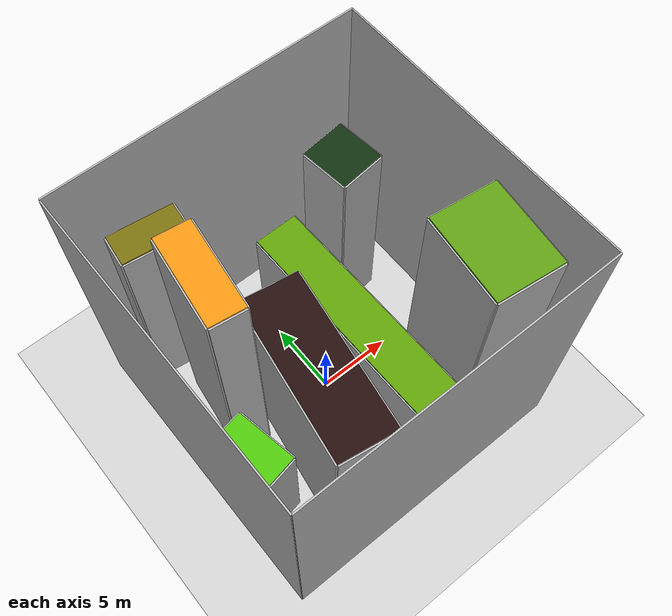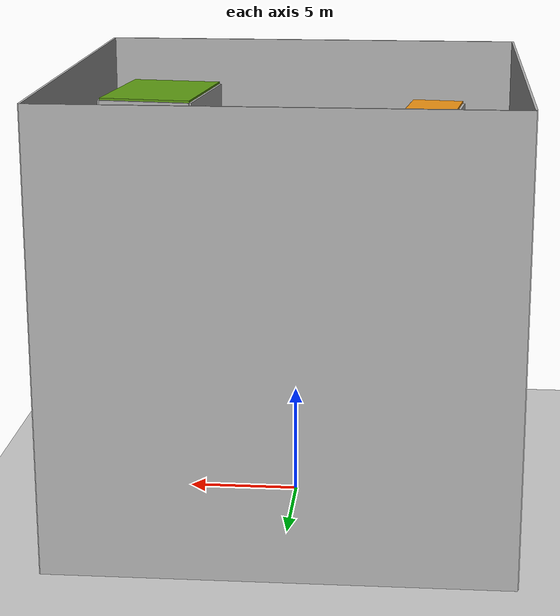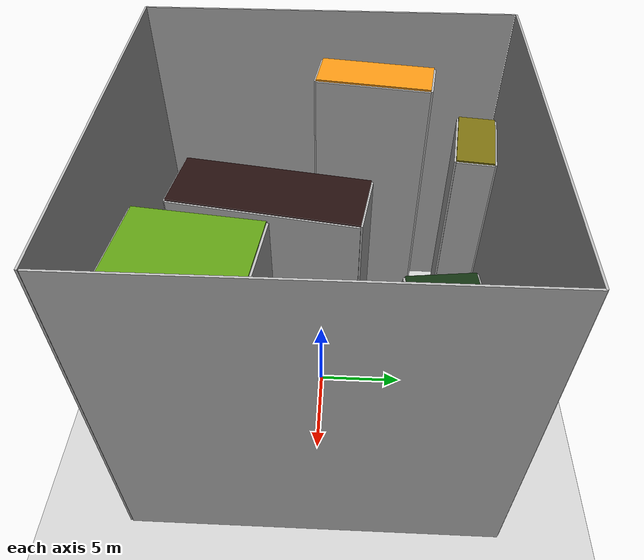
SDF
<sdf version='1.6'>
  <world name='default'>
    <light name='sun' type='directional'>
      <cast_shadows>1</cast_shadows>
      <pose frame=''>0 0 10 0 -0 0</pose>
      <diffuse>0.8 0.8 0.8 1</diffuse>
      <specular>0.2 0.2 0.2 1</specular>
      <attenuation>
        <range>1000</range>
        <constant>0.9</constant>
        <linear>0.01</linear>
        <quadratic>0.001</quadratic>
      </attenuation>
      <direction>-0.5 0.1 -0.9</direction>
    </light>
    <model name='ground_plane'>
      <static>true</static>
      <link name='link'>
        <collision name='collision'>
          <geometry>
            <plane>
              <normal>0 0 1</normal>
              <size>20 20</size>
            </plane>
          </geometry>
          <surface>
              <friction>
                <ode>
                  <mu>100</mu>
                  <mu2>50</mu2>
                </ode>
              </friction>
          </surface>
        </collision>
        <visual name='visual'>
          <cast_shadows>false</cast_shadows>
          <geometry>
            <plane>
              <normal>0 0 1</normal>
              <size>20 20</size>
            </plane>
          </geometry>
          <material>
            <script>
              <uri>file://media/materials/scripts/gazebo.material</uri>
              <name>Gazebo/Grey</name>
            </script>
          </material>
        </visual>
      </link>
    </model>
    <plugin name="ros_interface_plugin" filename="librotors_gazebo_ros_interface_plugin.so"/>

    <spherical_coordinates>
      <surface_model>EARTH_WGS84</surface_model>
      <latitude_deg>50.0885311</latitude_deg>
      <longitude_deg>14.4041669</longitude_deg>
      <elevation>200.0</elevation>
      <heading_deg>0</heading_deg>
    </spherical_coordinates>
    <gravity>0 0 -9.8</gravity>
    <physics type='ode'>
      <ode>
        <solver>
          <type>quick</type>
          <iters>1000</iters>
          <sor>1.3</sor>
        </solver>
        <constraints>
          <cfm>0</cfm>
          <erp>0.2</erp>
          <contact_max_correcting_vel>100</contact_max_correcting_vel>
          <contact_surface_layer>0.001</contact_surface_layer>
        </constraints>
      </ode>
      <max_step_size>0.01</max_step_size>
      <real_time_factor>1</real_time_factor>
      <real_time_update_rate>100</real_time_update_rate>
    </physics>
    <model name='upper_face_of_box_box_0'>
      <static>true</static>
      <pose>-3.037827730178833 -2.960949659347534 13.062334649037908 0.0 0.0 1.4183958447437104</pose>
      <link name='link'>
        <collision name='collision'>
          <geometry>
            <box>
              <size>10.705953951815745 3.7873968483794087 0.1</size>
            </box>
          </geometry>
          <surface>
              <friction>
                <ode>
                  <mu>100</mu>
                  <mu2>50</mu2>
                </ode>
              </friction>
          </surface>
        </collision>
        <visual name='visual'>
          <cast_shadows>false</cast_shadows>
          <geometry>
            <box>
              <size>10.705953951815745 3.7873968483794087 0.1</size>
            </box>
          </geometry>
          <material>
                        <ambient>0.1390484712361435 0.05330917590974482 0.05102876332956042 1</ambient>
            <diffuse>0.1390484712361435 0.05330917590974482 0.05102876332956042 1</diffuse>
          </material>
        </visual>
        <gravity>false</gravity>
      </link>
    </model>
    <model name='front_face_of_box_box_0'>
      <static>true</static>
      <pose>-1.1166577310633279 -3.2560249017791367 6.5061673245189535 0.0 0.0 2.989192171538607</pose>
      <link name='link'>
        <collision name='collision'>
          <geometry>
            <box>
              <size>0.1 10.705953951815745 13.012334649037907</size>
            </box>
          </geometry>
          <surface>
              <friction>
                <ode>
                  <mu>100</mu>
                  <mu2>50</mu2>
                </ode>
              </friction>
          </surface>
        </collision>
        <visual name='visual'>
          <cast_shadows>false</cast_shadows>
          <geometry>
            <box>
              <size>0.1 10.705953951815745 13.012334649037907</size>
            </box>
          </geometry>
          <material>
                        <script>
                <uri>/home/patik/Diplomka/dp_ws/src/helper_pkg/src/helper_pkg/../../../pesat_resources/worlds/box_world/scripts</uri>
                <uri>/home/patik/Diplomka/dp_ws/src/helper_pkg/src/helper_pkg/../../../pesat_resources/textures</uri>
                <name>vrc/majors_box_0</name>
            </script>
          </material>
        </visual>
        <gravity>false</gravity>
      </link>
    </model>
    <model name='back_face_of_box_box_0'>
      <static>true</static>
      <pose>-4.958997729294339 -2.6658744169159316 6.5061673245189535 0.0 0.0 2.989192171538607</pose>
      <link name='link'>
        <collision name='collision'>
          <geometry>
            <box>
              <size>0.1 10.705953951815745 13.012334649037907</size>
            </box>
          </geometry>
          <surface>
              <friction>
                <ode>
                  <mu>100</mu>
                  <mu2>50</mu2>
                </ode>
              </friction>
          </surface>
        </collision>
        <visual name='visual'>
          <cast_shadows>false</cast_shadows>
          <geometry>
            <box>
              <size>0.1 10.705953951815745 13.012334649037907</size>
            </box>
          </geometry>
          <material>
                        <script>
                <uri>/home/patik/Diplomka/dp_ws/src/helper_pkg/src/helper_pkg/../../../pesat_resources/worlds/box_world/scripts</uri>
                <uri>/home/patik/Diplomka/dp_ws/src/helper_pkg/src/helper_pkg/../../../pesat_resources/textures</uri>
                <name>vrc/majors_box_0</name>
            </script>
          </material>
        </visual>
        <gravity>false</gravity>
      </link>
    </model>
    <model name='left_face_of_box_box_0'>
      <static>true</static>
      <pose>-3.858060293614189 -8.301303462614772 6.5061673245189535 0.0 0.0 2.989192171538607</pose>
      <link name='link'>
        <collision name='collision'>
          <geometry>
            <box>
              <size>3.7873968483794087 0.1 13.012334649037907</size>
            </box>
          </geometry>
          <surface>
              <friction>
                <ode>
                  <mu>100</mu>
                  <mu2>50</mu2>
                </ode>
              </friction>
          </surface>
        </collision>
        <visual name='visual'>
          <cast_shadows>false</cast_shadows>
          <geometry>
            <box>
              <size>3.7873968483794087 0.1 13.012334649037907</size>
            </box>
          </geometry>
          <material>
                        <script>
                <uri>/home/patik/Diplomka/dp_ws/src/helper_pkg/src/helper_pkg/../../../pesat_resources/worlds/box_world/scripts</uri>
                <uri>/home/patik/Diplomka/dp_ws/src/helper_pkg/src/helper_pkg/../../../pesat_resources/textures</uri>
                <name>vrc/minors_box_0</name>
            </script>
          </material>
        </visual>
        <gravity>false</gravity>
      </link>
    </model>
    <model name='right_face_of_box_box_0'>
      <static>true</static>
      <pose>-2.217595166743477 2.379404143919703 6.5061673245189535 0.0 0.0 2.989192171538607</pose>
      <link name='link'>
        <collision name='collision'>
          <geometry>
            <box>
              <size>3.7873968483794087 0.1 13.012334649037907</size>
            </box>
          </geometry>
          <surface>
              <friction>
                <ode>
                  <mu>100</mu>
                  <mu2>50</mu2>
                </ode>
              </friction>
          </surface>
        </collision>
        <visual name='visual'>
          <cast_shadows>false</cast_shadows>
          <geometry>
            <box>
              <size>3.7873968483794087 0.1 13.012334649037907</size>
            </box>
          </geometry>
          <material>
                        <script>
                <uri>/home/patik/Diplomka/dp_ws/src/helper_pkg/src/helper_pkg/../../../pesat_resources/worlds/box_world/scripts</uri>
                <uri>/home/patik/Diplomka/dp_ws/src/helper_pkg/src/helper_pkg/../../../pesat_resources/textures</uri>
                <name>vrc/minors_box_0</name>
            </script>
          </material>
        </visual>
        <gravity>false</gravity>
      </link>
    </model>
    <model name='upper_face_of_box_box_1'>
      <static>true</static>
      <pose>2.6477463245391846 -0.07830039411783218 6.855897089241907 0.0 0.0 0.014196406812587381</pose>
      <link name='link'>
        <collision name='collision'>
          <geometry>
            <box>
              <size>3.0877584974595695 16.722131010473845 0.1</size>
            </box>
          </geometry>
          <surface>
              <friction>
                <ode>
                  <mu>100</mu>
                  <mu2>50</mu2>
                </ode>
              </friction>
          </surface>
        </collision>
        <visual name='visual'>
          <cast_shadows>false</cast_shadows>
          <geometry>
            <box>
              <size>3.0877584974595695 16.722131010473845 0.1</size>
            </box>
          </geometry>
          <material>
                        <ambient>0.3665146074727429 0.6187437208969343 0.026689792506831008 1</ambient>
            <diffuse>0.3665146074727429 0.6187437208969343 0.026689792506831008 1</diffuse>
          </material>
        </visual>
        <gravity>false</gravity>
      </link>
    </model>
    <model name='front_face_of_box_box_1'>
      <static>true</static>
      <pose>2.767149221381709 -8.488518339070987 3.4029485446209535 0.0 0.0 1.5849927336074838</pose>
      <link name='link'>
        <collision name='collision'>
          <geometry>
            <box>
              <size>0.1 3.0877584974595695 6.805897089241907</size>
            </box>
          </geometry>
          <surface>
              <friction>
                <ode>
                  <mu>100</mu>
                  <mu2>50</mu2>
                </ode>
              </friction>
          </surface>
        </collision>
        <visual name='visual'>
          <cast_shadows>false</cast_shadows>
          <geometry>
            <box>
              <size>0.1 3.0877584974595695 6.805897089241907</size>
            </box>
          </geometry>
          <material>
                        <script>
                <uri>/home/patik/Diplomka/dp_ws/src/helper_pkg/src/helper_pkg/../../../pesat_resources/worlds/box_world/scripts</uri>
                <uri>/home/patik/Diplomka/dp_ws/src/helper_pkg/src/helper_pkg/../../../pesat_resources/textures</uri>
                <name>vrc/majors_box_1</name>
            </script>
          </material>
        </visual>
        <gravity>false</gravity>
      </link>
    </model>
    <model name='back_face_of_box_box_1'>
      <static>true</static>
      <pose>2.5283434276966603 8.331917550835323 3.4029485446209535 0.0 0.0 1.5849927336074838</pose>
      <link name='link'>
        <collision name='collision'>
          <geometry>
            <box>
              <size>0.1 3.0877584974595695 6.805897089241907</size>
            </box>
          </geometry>
          <surface>
              <friction>
                <ode>
                  <mu>100</mu>
                  <mu2>50</mu2>
                </ode>
              </friction>
          </surface>
        </collision>
        <visual name='visual'>
          <cast_shadows>false</cast_shadows>
          <geometry>
            <box>
              <size>0.1 3.0877584974595695 6.805897089241907</size>
            </box>
          </geometry>
          <material>
                        <script>
                <uri>/home/patik/Diplomka/dp_ws/src/helper_pkg/src/helper_pkg/../../../pesat_resources/worlds/box_world/scripts</uri>
                <uri>/home/patik/Diplomka/dp_ws/src/helper_pkg/src/helper_pkg/../../../pesat_resources/textures</uri>
                <name>vrc/majors_box_1</name>
            </script>
          </material>
        </visual>
        <gravity>false</gravity>
      </link>
    </model>
    <model name='left_face_of_box_box_1'>
      <static>true</static>
      <pose>1.0540276867031688 -0.10092699230530665 3.4029485446209535 0.0 0.0 1.5849927336074838</pose>
      <link name='link'>
        <collision name='collision'>
          <geometry>
            <box>
              <size>16.722131010473845 0.1 6.805897089241907</size>
            </box>
          </geometry>
          <surface>
              <friction>
                <ode>
                  <mu>100</mu>
                  <mu2>50</mu2>
                </ode>
              </friction>
          </surface>
        </collision>
        <visual name='visual'>
          <cast_shadows>false</cast_shadows>
          <geometry>
            <box>
              <size>16.722131010473845 0.1 6.805897089241907</size>
            </box>
          </geometry>
          <material>
                        <script>
                <uri>/home/patik/Diplomka/dp_ws/src/helper_pkg/src/helper_pkg/../../../pesat_resources/worlds/box_world/scripts</uri>
                <uri>/home/patik/Diplomka/dp_ws/src/helper_pkg/src/helper_pkg/../../../pesat_resources/textures</uri>
                <name>vrc/minors_box_1</name>
            </script>
          </material>
        </visual>
        <gravity>false</gravity>
      </link>
    </model>
    <model name='right_face_of_box_box_1'>
      <static>true</static>
      <pose>4.2414649623752005 -0.05567379593035772 3.4029485446209535 0.0 0.0 1.5849927336074838</pose>
      <link name='link'>
        <collision name='collision'>
          <geometry>
            <box>
              <size>16.722131010473845 0.1 6.805897089241907</size>
            </box>
          </geometry>
          <surface>
              <friction>
                <ode>
                  <mu>100</mu>
                  <mu2>50</mu2>
                </ode>
              </friction>
          </surface>
        </collision>
        <visual name='visual'>
          <cast_shadows>false</cast_shadows>
          <geometry>
            <box>
              <size>16.722131010473845 0.1 6.805897089241907</size>
            </box>
          </geometry>
          <material>
                        <script>
                <uri>/home/patik/Diplomka/dp_ws/src/helper_pkg/src/helper_pkg/../../../pesat_resources/worlds/box_world/scripts</uri>
                <uri>/home/patik/Diplomka/dp_ws/src/helper_pkg/src/helper_pkg/../../../pesat_resources/textures</uri>
                <name>vrc/minors_box_1</name>
            </script>
          </material>
        </visual>
        <gravity>false</gravity>
      </link>
    </model>
    <model name='upper_face_of_box_box_2'>
      <static>true</static>
      <pose>5.8997111320495605 5.769093990325928 14.602008485318542 0.0 0.0 0.1116231011678076</pose>
      <link name='link'>
        <collision name='collision'>
          <geometry>
            <box>
              <size>2.9948961892771937 3.255330037248059 0.1</size>
            </box>
          </geometry>
          <surface>
              <friction>
                <ode>
                  <mu>100</mu>
                  <mu2>50</mu2>
                </ode>
              </friction>
          </surface>
        </collision>
        <visual name='visual'>
          <cast_shadows>false</cast_shadows>
          <geometry>
            <box>
              <size>2.9948961892771937 3.255330037248059 0.1</size>
            </box>
          </geometry>
          <material>
                        <ambient>0.06880007246690367 0.1894479278761465 0.05706669994242566 1</ambient>
            <diffuse>0.06880007246690367 0.1894479278761465 0.05706669994242566 1</diffuse>
          </material>
        </visual>
        <gravity>false</gravity>
      </link>
    </model>
    <model name='front_face_of_box_box_2'>
      <static>true</static>
      <pose>6.086588665768598 4.101869739630822 7.276004242659271 0.0 0.0 1.6824194279627043</pose>
      <link name='link'>
        <collision name='collision'>
          <geometry>
            <box>
              <size>0.1 2.9948961892771937 14.552008485318542</size>
            </box>
          </geometry>
          <surface>
              <friction>
                <ode>
                  <mu>100</mu>
                  <mu2>50</mu2>
                </ode>
              </friction>
          </surface>
        </collision>
        <visual name='visual'>
          <cast_shadows>false</cast_shadows>
          <geometry>
            <box>
              <size>0.1 2.9948961892771937 14.552008485318542</size>
            </box>
          </geometry>
          <material>
                        <script>
                <uri>/home/patik/Diplomka/dp_ws/src/helper_pkg/src/helper_pkg/../../../pesat_resources/worlds/box_world/scripts</uri>
                <uri>/home/patik/Diplomka/dp_ws/src/helper_pkg/src/helper_pkg/../../../pesat_resources/textures</uri>
                <name>vrc/majors_box_2</name>
            </script>
          </material>
        </visual>
        <gravity>false</gravity>
      </link>
    </model>
    <model name='back_face_of_box_box_2'>
      <static>true</static>
      <pose>5.712833598330523 7.436318241021033 7.276004242659271 0.0 0.0 1.6824194279627043</pose>
      <link name='link'>
        <collision name='collision'>
          <geometry>
            <box>
              <size>0.1 2.9948961892771937 14.552008485318542</size>
            </box>
          </geometry>
          <surface>
              <friction>
                <ode>
                  <mu>100</mu>
                  <mu2>50</mu2>
                </ode>
              </friction>
          </surface>
        </collision>
        <visual name='visual'>
          <cast_shadows>false</cast_shadows>
          <geometry>
            <box>
              <size>0.1 2.9948961892771937 14.552008485318542</size>
            </box>
          </geometry>
          <material>
                        <script>
                <uri>/home/patik/Diplomka/dp_ws/src/helper_pkg/src/helper_pkg/../../../pesat_resources/worlds/box_world/scripts</uri>
                <uri>/home/patik/Diplomka/dp_ws/src/helper_pkg/src/helper_pkg/../../../pesat_resources/textures</uri>
                <name>vrc/majors_box_2</name>
            </script>
          </material>
        </visual>
        <gravity>false</gravity>
      </link>
    </model>
    <model name='left_face_of_box_box_2'>
      <static>true</static>
      <pose>4.361893414309106 5.596721508171258 7.276004242659271 0.0 0.0 1.6824194279627043</pose>
      <link name='link'>
        <collision name='collision'>
          <geometry>
            <box>
              <size>3.255330037248059 0.1 14.552008485318542</size>
            </box>
          </geometry>
          <surface>
              <friction>
                <ode>
                  <mu>100</mu>
                  <mu2>50</mu2>
                </ode>
              </friction>
          </surface>
        </collision>
        <visual name='visual'>
          <cast_shadows>false</cast_shadows>
          <geometry>
            <box>
              <size>3.255330037248059 0.1 14.552008485318542</size>
            </box>
          </geometry>
          <material>
                        <script>
                <uri>/home/patik/Diplomka/dp_ws/src/helper_pkg/src/helper_pkg/../../../pesat_resources/worlds/box_world/scripts</uri>
                <uri>/home/patik/Diplomka/dp_ws/src/helper_pkg/src/helper_pkg/../../../pesat_resources/textures</uri>
                <name>vrc/minors_box_2</name>
            </script>
          </material>
        </visual>
        <gravity>false</gravity>
      </link>
    </model>
    <model name='right_face_of_box_box_2'>
      <static>true</static>
      <pose>7.437528849790015 5.941466472480598 7.276004242659271 0.0 0.0 1.6824194279627043</pose>
      <link name='link'>
        <collision name='collision'>
          <geometry>
            <box>
              <size>3.255330037248059 0.1 14.552008485318542</size>
            </box>
          </geometry>
          <surface>
              <friction>
                <ode>
                  <mu>100</mu>
                  <mu2>50</mu2>
                </ode>
              </friction>
          </surface>
        </collision>
        <visual name='visual'>
          <cast_shadows>false</cast_shadows>
          <geometry>
            <box>
              <size>3.255330037248059 0.1 14.552008485318542</size>
            </box>
          </geometry>
          <material>
                        <script>
                <uri>/home/patik/Diplomka/dp_ws/src/helper_pkg/src/helper_pkg/../../../pesat_resources/worlds/box_world/scripts</uri>
                <uri>/home/patik/Diplomka/dp_ws/src/helper_pkg/src/helper_pkg/../../../pesat_resources/textures</uri>
                <name>vrc/minors_box_2</name>
            </script>
          </material>
        </visual>
        <gravity>false</gravity>
      </link>
    </model>
    <model name='upper_face_of_box_box_3'>
      <static>true</static>
      <pose>-8.055870056152344 -3.391749858856201 8.911956005183466 0.0 0.0 0.18888422416856054</pose>
      <link name='link'>
        <collision name='collision'>
          <geometry>
            <box>
              <size>2.50324302572536 4.104577759444691 0.1</size>
            </box>
          </geometry>
          <surface>
              <friction>
                <ode>
                  <mu>100</mu>
                  <mu2>50</mu2>
                </ode>
              </friction>
          </surface>
        </collision>
        <visual name='visual'>
          <cast_shadows>false</cast_shadows>
          <geometry>
            <box>
              <size>2.50324302572536 4.104577759444691 0.1</size>
            </box>
          </geometry>
          <material>
                        <ambient>0.30669045885037083 0.7667523879646418 0.03475276864777829 1</ambient>
            <diffuse>0.30669045885037083 0.7667523879646418 0.03475276864777829 1</diffuse>
          </material>
        </visual>
        <gravity>false</gravity>
      </link>
    </model>
    <model name='front_face_of_box_box_3'>
      <static>true</static>
      <pose>-7.661137818835439 -5.456648160135716 4.430978002591733 0.0 0.0 1.759680550963457</pose>
      <link name='link'>
        <collision name='collision'>
          <geometry>
            <box>
              <size>0.1 2.50324302572536 8.861956005183465</size>
            </box>
          </geometry>
          <surface>
              <friction>
                <ode>
                  <mu>100</mu>
                  <mu2>50</mu2>
                </ode>
              </friction>
          </surface>
        </collision>
        <visual name='visual'>
          <cast_shadows>false</cast_shadows>
          <geometry>
            <box>
              <size>0.1 2.50324302572536 8.861956005183465</size>
            </box>
          </geometry>
          <material>
                        <script>
                <uri>/home/patik/Diplomka/dp_ws/src/helper_pkg/src/helper_pkg/../../../pesat_resources/worlds/box_world/scripts</uri>
                <uri>/home/patik/Diplomka/dp_ws/src/helper_pkg/src/helper_pkg/../../../pesat_resources/textures</uri>
                <name>vrc/majors_box_3</name>
            </script>
          </material>
        </visual>
        <gravity>false</gravity>
      </link>
    </model>
    <model name='back_face_of_box_box_3'>
      <static>true</static>
      <pose>-8.450602293469249 -1.3268515575766866 4.430978002591733 0.0 0.0 1.759680550963457</pose>
      <link name='link'>
        <collision name='collision'>
          <geometry>
            <box>
              <size>0.1 2.50324302572536 8.861956005183465</size>
            </box>
          </geometry>
          <surface>
              <friction>
                <ode>
                  <mu>100</mu>
                  <mu2>50</mu2>
                </ode>
              </friction>
          </surface>
        </collision>
        <visual name='visual'>
          <cast_shadows>false</cast_shadows>
          <geometry>
            <box>
              <size>0.1 2.50324302572536 8.861956005183465</size>
            </box>
          </geometry>
          <material>
                        <script>
                <uri>/home/patik/Diplomka/dp_ws/src/helper_pkg/src/helper_pkg/../../../pesat_resources/worlds/box_world/scripts</uri>
                <uri>/home/patik/Diplomka/dp_ws/src/helper_pkg/src/helper_pkg/../../../pesat_resources/textures</uri>
                <name>vrc/majors_box_3</name>
            </script>
          </material>
        </visual>
        <gravity>false</gravity>
      </link>
    </model>
    <model name='left_face_of_box_box_3'>
      <static>true</static>
      <pose>-9.334341381736293 -3.6361463244741703 4.430978002591733 0.0 0.0 1.759680550963457</pose>
      <link name='link'>
        <collision name='collision'>
          <geometry>
            <box>
              <size>4.104577759444691 0.1 8.861956005183465</size>
            </box>
          </geometry>
          <surface>
              <friction>
                <ode>
                  <mu>100</mu>
                  <mu2>50</mu2>
                </ode>
              </friction>
          </surface>
        </collision>
        <visual name='visual'>
          <cast_shadows>false</cast_shadows>
          <geometry>
            <box>
              <size>4.104577759444691 0.1 8.861956005183465</size>
            </box>
          </geometry>
          <material>
                        <script>
                <uri>/home/patik/Diplomka/dp_ws/src/helper_pkg/src/helper_pkg/../../../pesat_resources/worlds/box_world/scripts</uri>
                <uri>/home/patik/Diplomka/dp_ws/src/helper_pkg/src/helper_pkg/../../../pesat_resources/textures</uri>
                <name>vrc/minors_box_3</name>
            </script>
          </material>
        </visual>
        <gravity>false</gravity>
      </link>
    </model>
    <model name='right_face_of_box_box_3'>
      <static>true</static>
      <pose>-6.777398730568396 -3.1473533932382325 4.430978002591733 0.0 0.0 1.759680550963457</pose>
      <link name='link'>
        <collision name='collision'>
          <geometry>
            <box>
              <size>4.104577759444691 0.1 8.861956005183465</size>
            </box>
          </geometry>
          <surface>
              <friction>
                <ode>
                  <mu>100</mu>
                  <mu2>50</mu2>
                </ode>
              </friction>
          </surface>
        </collision>
        <visual name='visual'>
          <cast_shadows>false</cast_shadows>
          <geometry>
            <box>
              <size>4.104577759444691 0.1 8.861956005183465</size>
            </box>
          </geometry>
          <material>
                        <script>
                <uri>/home/patik/Diplomka/dp_ws/src/helper_pkg/src/helper_pkg/../../../pesat_resources/worlds/box_world/scripts</uri>
                <uri>/home/patik/Diplomka/dp_ws/src/helper_pkg/src/helper_pkg/../../../pesat_resources/textures</uri>
                <name>vrc/minors_box_3</name>
            </script>
          </material>
        </visual>
        <gravity>false</gravity>
      </link>
    </model>
    <model name='upper_face_of_box_box_4'>
      <static>true</static>
      <pose>6.899400234222412 -5.146559238433838 18.116273096288605 0.0 0.0 1.453758267436935</pose>
      <link name='link'>
        <collision name='collision'>
          <geometry>
            <box>
              <size>5.80870292299687 4.315497444378678 0.1</size>
            </box>
          </geometry>
          <surface>
              <friction>
                <ode>
                  <mu>100</mu>
                  <mu2>50</mu2>
                </ode>
              </friction>
          </surface>
        </collision>
        <visual name='visual'>
          <cast_shadows>false</cast_shadows>
          <geometry>
            <box>
              <size>5.80870292299687 4.315497444378678 0.1</size>
            </box>
          </geometry>
          <material>
                        <ambient>0.36748517363764066 0.6101431089426826 0.07084812978936708 1</ambient>
            <diffuse>0.36748517363764066 0.6101431089426826 0.07084812978936708 1</diffuse>
          </material>
        </visual>
        <gravity>false</gravity>
      </link>
    </model>
    <model name='front_face_of_box_box_4'>
      <static>true</static>
      <pose>9.092045440062055 -5.404360366509511 9.033136548144302 0.0 0.0 3.0245545942318315</pose>
      <link name='link'>
        <collision name='collision'>
          <geometry>
            <box>
              <size>0.1 5.80870292299687 18.066273096288604</size>
            </box>
          </geometry>
          <surface>
              <friction>
                <ode>
                  <mu>100</mu>
                  <mu2>50</mu2>
                </ode>
              </friction>
          </surface>
        </collision>
        <visual name='visual'>
          <cast_shadows>false</cast_shadows>
          <geometry>
            <box>
              <size>0.1 5.80870292299687 18.066273096288604</size>
            </box>
          </geometry>
          <material>
                        <script>
                <uri>/home/patik/Diplomka/dp_ws/src/helper_pkg/src/helper_pkg/../../../pesat_resources/worlds/box_world/scripts</uri>
                <uri>/home/patik/Diplomka/dp_ws/src/helper_pkg/src/helper_pkg/../../../pesat_resources/textures</uri>
                <name>vrc/majors_box_4</name>
            </script>
          </material>
        </visual>
        <gravity>false</gravity>
      </link>
    </model>
    <model name='back_face_of_box_box_4'>
      <static>true</static>
      <pose>4.706755028382769 -4.8887581103581645 9.033136548144302 0.0 0.0 3.0245545942318315</pose>
      <link name='link'>
        <collision name='collision'>
          <geometry>
            <box>
              <size>0.1 5.80870292299687 18.066273096288604</size>
            </box>
          </geometry>
          <surface>
              <friction>
                <ode>
                  <mu>100</mu>
                  <mu2>50</mu2>
                </ode>
              </friction>
          </surface>
        </collision>
        <visual name='visual'>
          <cast_shadows>false</cast_shadows>
          <geometry>
            <box>
              <size>0.1 5.80870292299687 18.066273096288604</size>
            </box>
          </geometry>
          <material>
                        <script>
                <uri>/home/patik/Diplomka/dp_ws/src/helper_pkg/src/helper_pkg/../../../pesat_resources/worlds/box_world/scripts</uri>
                <uri>/home/patik/Diplomka/dp_ws/src/helper_pkg/src/helper_pkg/../../../pesat_resources/textures</uri>
                <name>vrc/majors_box_4</name>
            </script>
          </material>
        </visual>
        <gravity>false</gravity>
      </link>
    </model>
    <model name='left_face_of_box_box_4'>
      <static>true</static>
      <pose>6.554417523168672 -8.080699570308226 9.033136548144302 0.0 0.0 3.0245545942318315</pose>
      <link name='link'>
        <collision name='collision'>
          <geometry>
            <box>
              <size>4.315497444378678 0.1 18.066273096288604</size>
            </box>
          </geometry>
          <surface>
              <friction>
                <ode>
                  <mu>100</mu>
                  <mu2>50</mu2>
                </ode>
              </friction>
          </surface>
        </collision>
        <visual name='visual'>
          <cast_shadows>false</cast_shadows>
          <geometry>
            <box>
              <size>4.315497444378678 0.1 18.066273096288604</size>
            </box>
          </geometry>
          <material>
                        <script>
                <uri>/home/patik/Diplomka/dp_ws/src/helper_pkg/src/helper_pkg/../../../pesat_resources/worlds/box_world/scripts</uri>
                <uri>/home/patik/Diplomka/dp_ws/src/helper_pkg/src/helper_pkg/../../../pesat_resources/textures</uri>
                <name>vrc/minors_box_4</name>
            </script>
          </material>
        </visual>
        <gravity>false</gravity>
      </link>
    </model>
    <model name='right_face_of_box_box_4'>
      <static>true</static>
      <pose>7.244382945276153 -2.212418906559447 9.033136548144302 0.0 0.0 3.0245545942318315</pose>
      <link name='link'>
        <collision name='collision'>
          <geometry>
            <box>
              <size>4.315497444378678 0.1 18.066273096288604</size>
            </box>
          </geometry>
          <surface>
              <friction>
                <ode>
                  <mu>100</mu>
                  <mu2>50</mu2>
                </ode>
              </friction>
          </surface>
        </collision>
        <visual name='visual'>
          <cast_shadows>false</cast_shadows>
          <geometry>
            <box>
              <size>4.315497444378678 0.1 18.066273096288604</size>
            </box>
          </geometry>
          <material>
                        <script>
                <uri>/home/patik/Diplomka/dp_ws/src/helper_pkg/src/helper_pkg/../../../pesat_resources/worlds/box_world/scripts</uri>
                <uri>/home/patik/Diplomka/dp_ws/src/helper_pkg/src/helper_pkg/../../../pesat_resources/textures</uri>
                <name>vrc/minors_box_4</name>
            </script>
          </material>
        </visual>
        <gravity>false</gravity>
      </link>
    </model>
    <model name='upper_face_of_box_box_5'>
      <static>true</static>
      <pose>-5.829028129577637 8.292282104492188 14.764999248607717 0.0 0.0 1.4490020089539524</pose>
      <link name='link'>
        <collision name='collision'>
          <geometry>
            <box>
              <size>2.0450490907105356 4.163208755301545 0.1</size>
            </box>
          </geometry>
          <surface>
              <friction>
                <ode>
                  <mu>100</mu>
                  <mu2>50</mu2>
                </ode>
              </friction>
          </surface>
        </collision>
        <visual name='visual'>
          <cast_shadows>false</cast_shadows>
          <geometry>
            <box>
              <size>2.0450490907105356 4.163208755301545 0.1</size>
            </box>
          </geometry>
          <material>
                        <ambient>0.46993771822757446 0.42923904820831227 0.05770587940630477 1</ambient>
            <diffuse>0.46993771822757446 0.42923904820831227 0.05770587940630477 1</diffuse>
          </material>
        </visual>
        <gravity>false</gravity>
      </link>
    </model>
    <model name='front_face_of_box_box_5'>
      <static>true</static>
      <pose>-3.7132141740796305 8.03330618178929 7.357499624303858 0.0 0.0 3.019798335748849</pose>
      <link name='link'>
        <collision name='collision'>
          <geometry>
            <box>
              <size>0.1 2.0450490907105356 14.714999248607716</size>
            </box>
          </geometry>
          <surface>
              <friction>
                <ode>
                  <mu>100</mu>
                  <mu2>50</mu2>
                </ode>
              </friction>
          </surface>
        </collision>
        <visual name='visual'>
          <cast_shadows>false</cast_shadows>
          <geometry>
            <box>
              <size>0.1 2.0450490907105356 14.714999248607716</size>
            </box>
          </geometry>
          <material>
                        <script>
                <uri>/home/patik/Diplomka/dp_ws/src/helper_pkg/src/helper_pkg/../../../pesat_resources/worlds/box_world/scripts</uri>
                <uri>/home/patik/Diplomka/dp_ws/src/helper_pkg/src/helper_pkg/../../../pesat_resources/textures</uri>
                <name>vrc/majors_box_5</name>
            </script>
          </material>
        </visual>
        <gravity>false</gravity>
      </link>
    </model>
    <model name='back_face_of_box_box_5'>
      <static>true</static>
      <pose>-7.944842085075645 8.551258027195086 7.357499624303858 0.0 0.0 3.019798335748849</pose>
      <link name='link'>
        <collision name='collision'>
          <geometry>
            <box>
              <size>0.1 2.0450490907105356 14.714999248607716</size>
            </box>
          </geometry>
          <surface>
              <friction>
                <ode>
                  <mu>100</mu>
                  <mu2>50</mu2>
                </ode>
              </friction>
          </surface>
        </collision>
        <visual name='visual'>
          <cast_shadows>false</cast_shadows>
          <geometry>
            <box>
              <size>0.1 2.0450490907105356 14.714999248607716</size>
            </box>
          </geometry>
          <material>
                        <script>
                <uri>/home/patik/Diplomka/dp_ws/src/helper_pkg/src/helper_pkg/../../../pesat_resources/worlds/box_world/scripts</uri>
                <uri>/home/patik/Diplomka/dp_ws/src/helper_pkg/src/helper_pkg/../../../pesat_resources/textures</uri>
                <name>vrc/majors_box_5</name>
            </script>
          </material>
        </visual>
        <gravity>false</gravity>
      </link>
    </model>
    <model name='left_face_of_box_box_5'>
      <static>true</static>
      <pose>-5.959332813067263 7.227702567843943 7.357499624303858 0.0 0.0 3.019798335748849</pose>
      <link name='link'>
        <collision name='collision'>
          <geometry>
            <box>
              <size>4.163208755301545 0.1 14.714999248607716</size>
            </box>
          </geometry>
          <surface>
              <friction>
                <ode>
                  <mu>100</mu>
                  <mu2>50</mu2>
                </ode>
              </friction>
          </surface>
        </collision>
        <visual name='visual'>
          <cast_shadows>false</cast_shadows>
          <geometry>
            <box>
              <size>4.163208755301545 0.1 14.714999248607716</size>
            </box>
          </geometry>
          <material>
                        <script>
                <uri>/home/patik/Diplomka/dp_ws/src/helper_pkg/src/helper_pkg/../../../pesat_resources/worlds/box_world/scripts</uri>
                <uri>/home/patik/Diplomka/dp_ws/src/helper_pkg/src/helper_pkg/../../../pesat_resources/textures</uri>
                <name>vrc/minors_box_5</name>
            </script>
          </material>
        </visual>
        <gravity>false</gravity>
      </link>
    </model>
    <model name='right_face_of_box_box_5'>
      <static>true</static>
      <pose>-5.69872344608801 9.356861641140432 7.357499624303858 0.0 0.0 3.019798335748849</pose>
      <link name='link'>
        <collision name='collision'>
          <geometry>
            <box>
              <size>4.163208755301545 0.1 14.714999248607716</size>
            </box>
          </geometry>
          <surface>
              <friction>
                <ode>
                  <mu>100</mu>
                  <mu2>50</mu2>
                </ode>
              </friction>
          </surface>
        </collision>
        <visual name='visual'>
          <cast_shadows>false</cast_shadows>
          <geometry>
            <box>
              <size>4.163208755301545 0.1 14.714999248607716</size>
            </box>
          </geometry>
          <material>
                        <script>
                <uri>/home/patik/Diplomka/dp_ws/src/helper_pkg/src/helper_pkg/../../../pesat_resources/worlds/box_world/scripts</uri>
                <uri>/home/patik/Diplomka/dp_ws/src/helper_pkg/src/helper_pkg/../../../pesat_resources/textures</uri>
                <name>vrc/minors_box_5</name>
            </script>
          </material>
        </visual>
        <gravity>false</gravity>
      </link>
    </model>
    <model name='upper_face_of_box_box_6'>
      <static>true</static>
      <pose>-5.941562175750732 2.5355541706085205 18.569164494548353 0.0 0.0 1.4409171060318755</pose>
      <link name='link'>
        <collision name='collision'>
          <geometry>
            <box>
              <size>5.860241114073385 2.2010622849263486 0.1</size>
            </box>
          </geometry>
          <surface>
              <friction>
                <ode>
                  <mu>100</mu>
                  <mu2>50</mu2>
                </ode>
              </friction>
          </surface>
        </collision>
        <visual name='visual'>
          <cast_shadows>false</cast_shadows>
          <geometry>
            <box>
              <size>5.860241114073385 2.2010622849263486 0.1</size>
            </box>
          </geometry>
          <material>
                        <ambient>0.9384963777342281 0.5772962320522756 0.07262417448842491 1</ambient>
            <diffuse>0.9384963777342281 0.5772962320522756 0.07262417448842491 1</diffuse>
          </material>
        </visual>
        <gravity>false</gravity>
      </link>
    </model>
    <model name='front_face_of_box_box_6'>
      <static>true</static>
      <pose>-4.8007213316771855 2.386543841197522 9.259582247274176 0.0 0.0 3.011713432826772</pose>
      <link name='link'>
        <collision name='collision'>
          <geometry>
            <box>
              <size>0.1 5.860241114073385 18.519164494548352</size>
            </box>
          </geometry>
          <surface>
              <friction>
                <ode>
                  <mu>100</mu>
                  <mu2>50</mu2>
                </ode>
              </friction>
          </surface>
        </collision>
        <visual name='visual'>
          <cast_shadows>false</cast_shadows>
          <geometry>
            <box>
              <size>0.1 5.860241114073385 18.519164494548352</size>
            </box>
          </geometry>
          <material>
                        <script>
                <uri>/home/patik/Diplomka/dp_ws/src/helper_pkg/src/helper_pkg/../../../pesat_resources/worlds/box_world/scripts</uri>
                <uri>/home/patik/Diplomka/dp_ws/src/helper_pkg/src/helper_pkg/../../../pesat_resources/textures</uri>
                <name>vrc/majors_box_6</name>
            </script>
          </material>
        </visual>
        <gravity>false</gravity>
      </link>
    </model>
    <model name='back_face_of_box_box_6'>
      <static>true</static>
      <pose>-7.082403019824279 2.684564500019519 9.259582247274176 0.0 0.0 3.011713432826772</pose>
      <link name='link'>
        <collision name='collision'>
          <geometry>
            <box>
              <size>0.1 5.860241114073385 18.519164494548352</size>
            </box>
          </geometry>
          <surface>
              <friction>
                <ode>
                  <mu>100</mu>
                  <mu2>50</mu2>
                </ode>
              </friction>
          </surface>
        </collision>
        <visual name='visual'>
          <cast_shadows>false</cast_shadows>
          <geometry>
            <box>
              <size>0.1 5.860241114073385 18.519164494548352</size>
            </box>
          </geometry>
          <material>
                        <script>
                <uri>/home/patik/Diplomka/dp_ws/src/helper_pkg/src/helper_pkg/../../../pesat_resources/worlds/box_world/scripts</uri>
                <uri>/home/patik/Diplomka/dp_ws/src/helper_pkg/src/helper_pkg/../../../pesat_resources/textures</uri>
                <name>vrc/majors_box_6</name>
            </script>
          </material>
        </visual>
        <gravity>false</gravity>
      </link>
    </model>
    <model name='left_face_of_box_box_6'>
      <static>true</static>
      <pose>-6.327530646745632 -0.4194664509558286 9.259582247274176 0.0 0.0 3.011713432826772</pose>
      <link name='link'>
        <collision name='collision'>
          <geometry>
            <box>
              <size>2.2010622849263486 0.1 18.519164494548352</size>
            </box>
          </geometry>
          <surface>
              <friction>
                <ode>
                  <mu>100</mu>
                  <mu2>50</mu2>
                </ode>
              </friction>
          </surface>
        </collision>
        <visual name='visual'>
          <cast_shadows>false</cast_shadows>
          <geometry>
            <box>
              <size>2.2010622849263486 0.1 18.519164494548352</size>
            </box>
          </geometry>
          <material>
                        <script>
                <uri>/home/patik/Diplomka/dp_ws/src/helper_pkg/src/helper_pkg/../../../pesat_resources/worlds/box_world/scripts</uri>
                <uri>/home/patik/Diplomka/dp_ws/src/helper_pkg/src/helper_pkg/../../../pesat_resources/textures</uri>
                <name>vrc/minors_box_6</name>
            </script>
          </material>
        </visual>
        <gravity>false</gravity>
      </link>
    </model>
    <model name='right_face_of_box_box_6'>
      <static>true</static>
      <pose>-5.555593704755833 5.490574792172868 9.259582247274176 0.0 0.0 3.011713432826772</pose>
      <link name='link'>
        <collision name='collision'>
          <geometry>
            <box>
              <size>2.2010622849263486 0.1 18.519164494548352</size>
            </box>
          </geometry>
          <surface>
              <friction>
                <ode>
                  <mu>100</mu>
                  <mu2>50</mu2>
                </ode>
              </friction>
          </surface>
        </collision>
        <visual name='visual'>
          <cast_shadows>false</cast_shadows>
          <geometry>
            <box>
              <size>2.2010622849263486 0.1 18.519164494548352</size>
            </box>
          </geometry>
          <material>
                        <script>
                <uri>/home/patik/Diplomka/dp_ws/src/helper_pkg/src/helper_pkg/../../../pesat_resources/worlds/box_world/scripts</uri>
                <uri>/home/patik/Diplomka/dp_ws/src/helper_pkg/src/helper_pkg/../../../pesat_resources/textures</uri>
                <name>vrc/minors_box_6</name>
            </script>
          </material>
        </visual>
        <gravity>false</gravity>
      </link>
    </model>
    <model name='front_face_of_box_world_side'>
      <static>true</static>
      <pose>10.0 0.05 10.0 0.0 0.0 0.0</pose>
      <link name='link'>
        <collision name='collision'>
          <geometry>
            <box>
              <size>0.1 20 20.0</size>
            </box>
          </geometry>
          <surface>
              <friction>
                <ode>
                  <mu>100</mu>
                  <mu2>50</mu2>
                </ode>
              </friction>
          </surface>
        </collision>
        <visual name='visual'>
          <cast_shadows>false</cast_shadows>
          <geometry>
            <box>
              <size>0.1 20 20.0</size>
            </box>
          </geometry>
          <material>
                        <script>
                <uri>/home/patik/Diplomka/dp_ws/src/helper_pkg/src/helper_pkg/../../../pesat_resources/worlds/box_world/scripts</uri>
                <uri>/home/patik/Diplomka/dp_ws/src/helper_pkg/src/helper_pkg/../../../pesat_resources/textures</uri>
                <name>vrc/majors_world_side</name>
            </script>
          </material>
        </visual>
        <gravity>false</gravity>
      </link>
    </model>
    <model name='back_face_of_box_world_side'>
      <static>true</static>
      <pose>-10.0 -0.05 10.0 0.0 0.0 0.0</pose>
      <link name='link'>
        <collision name='collision'>
          <geometry>
            <box>
              <size>0.1 20 20.0</size>
            </box>
          </geometry>
          <surface>
              <friction>
                <ode>
                  <mu>100</mu>
                  <mu2>50</mu2>
                </ode>
              </friction>
          </surface>
        </collision>
        <visual name='visual'>
          <cast_shadows>false</cast_shadows>
          <geometry>
            <box>
              <size>0.1 20 20.0</size>
            </box>
          </geometry>
          <material>
                        <script>
                <uri>/home/patik/Diplomka/dp_ws/src/helper_pkg/src/helper_pkg/../../../pesat_resources/worlds/box_world/scripts</uri>
                <uri>/home/patik/Diplomka/dp_ws/src/helper_pkg/src/helper_pkg/../../../pesat_resources/textures</uri>
                <name>vrc/majors_world_side</name>
            </script>
          </material>
        </visual>
        <gravity>false</gravity>
      </link>
    </model>
    <model name='left_face_of_box_world_side'>
      <static>true</static>
      <pose>0 -10.05 10.0 0.0 0.0 0.0</pose>
      <link name='link'>
        <collision name='collision'>
          <geometry>
            <box>
              <size>20 0.1 20.0</size>
            </box>
          </geometry>
          <surface>
              <friction>
                <ode>
                  <mu>100</mu>
                  <mu2>50</mu2>
                </ode>
              </friction>
          </surface>
        </collision>
        <visual name='visual'>
          <cast_shadows>false</cast_shadows>
          <geometry>
            <box>
              <size>20 0.1 20.0</size>
            </box>
          </geometry>
          <material>
                        <script>
                <uri>/home/patik/Diplomka/dp_ws/src/helper_pkg/src/helper_pkg/../../../pesat_resources/worlds/box_world/scripts</uri>
                <uri>/home/patik/Diplomka/dp_ws/src/helper_pkg/src/helper_pkg/../../../pesat_resources/textures</uri>
                <name>vrc/minors_world_side</name>
            </script>
          </material>
        </visual>
        <gravity>false</gravity>
      </link>
    </model>
    <model name='right_face_of_box_world_side'>
      <static>true</static>
      <pose>0 10.05 10.0 0.0 0.0 0.0</pose>
      <link name='link'>
        <collision name='collision'>
          <geometry>
            <box>
              <size>20 0.1 20.0</size>
            </box>
          </geometry>
          <surface>
              <friction>
                <ode>
                  <mu>100</mu>
                  <mu2>50</mu2>
                </ode>
              </friction>
          </surface>
        </collision>
        <visual name='visual'>
          <cast_shadows>false</cast_shadows>
          <geometry>
            <box>
              <size>20 0.1 20.0</size>
            </box>
          </geometry>
          <material>
                        <script>
                <uri>/home/patik/Diplomka/dp_ws/src/helper_pkg/src/helper_pkg/../../../pesat_resources/worlds/box_world/scripts</uri>
                <uri>/home/patik/Diplomka/dp_ws/src/helper_pkg/src/helper_pkg/../../../pesat_resources/textures</uri>
                <name>vrc/minors_world_side</name>
            </script>
          </material>
        </visual>
        <gravity>false</gravity>
      </link>
    </model>

    <plugin name='gazebo_octomap' filename='librotors_gazebo_octomap_plugin.so'/>
  </world>
</sdf>
